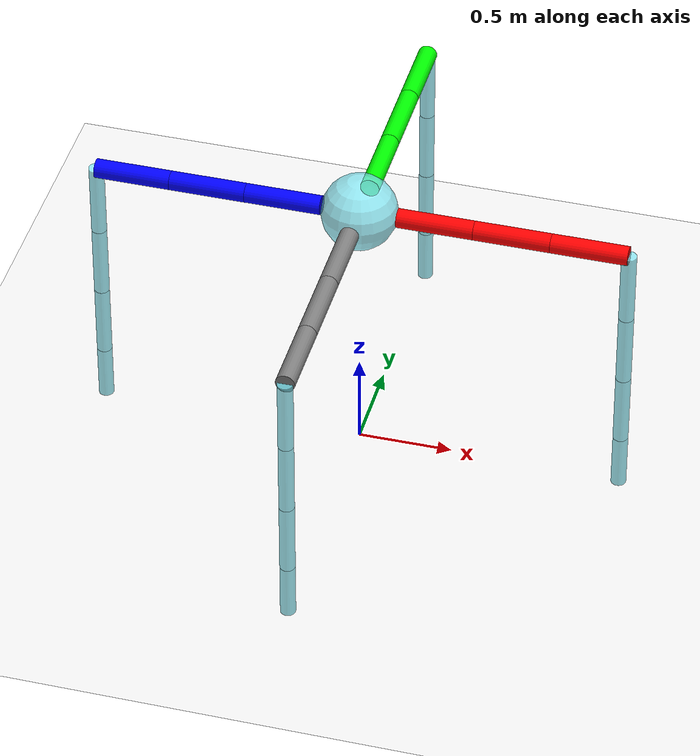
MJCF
<mujoco model="spider_robot"><actuator><motor name="leg1_upper_joint_motor" joint="leg1_upper_joint" gear="166.56367630195763" /><motor name="leg5_upper_joint_motor" joint="leg5_upper_joint" gear="166.56367630195763" /><motor name="leg9_upper_joint_motor" joint="leg9_upper_joint" gear="166.56367630195763" /><motor name="leg1_lower_joint_motor" joint="leg1_lower_joint" gear="230.9068722815382" /><motor name="leg5_lower_joint_motor" joint="leg5_lower_joint" gear="230.9068722815382" /><motor name="leg9_lower_joint_motor" joint="leg9_lower_joint" gear="230.9068722815382" /><motor name="leg13_lower_joint_motor" joint="leg13_lower_joint" gear="230.9068722815382" /><motor name="leg17_lower_joint_motor" joint="leg17_lower_joint" gear="230.9068722815382" /><motor name="leg2_upper_joint_motor" joint="leg2_upper_joint" gear="166.56367630195763" /><motor name="leg6_upper_joint_motor" joint="leg6_upper_joint" gear="166.56367630195763" /><motor name="leg10_upper_joint_motor" joint="leg10_upper_joint" gear="166.56367630195763" /><motor name="leg2_lower_joint_motor" joint="leg2_lower_joint" gear="230.9068722815382" /><motor name="leg6_lower_joint_motor" joint="leg6_lower_joint" gear="230.9068722815382" /><motor name="leg10_lower_joint_motor" joint="leg10_lower_joint" gear="230.9068722815382" /><motor name="leg14_lower_joint_motor" joint="leg14_lower_joint" gear="230.9068722815382" /><motor name="leg18_lower_joint_motor" joint="leg18_lower_joint" gear="230.9068722815382" /><motor name="leg3_upper_joint_motor" joint="leg3_upper_joint" gear="166.56367630195763" /><motor name="leg7_upper_joint_motor" joint="leg7_upper_joint" gear="166.56367630195763" /><motor name="leg11_upper_joint_motor" joint="leg11_upper_joint" gear="166.56367630195763" /><motor name="leg3_lower_joint_motor" joint="leg3_lower_joint" gear="230.9068722815382" /><motor name="leg7_lower_joint_motor" joint="leg7_lower_joint" gear="230.9068722815382" /><motor name="leg11_lower_joint_motor" joint="leg11_lower_joint" gear="230.9068722815382" /><motor name="leg15_lower_joint_motor" joint="leg15_lower_joint" gear="230.9068722815382" /><motor name="leg19_lower_joint_motor" joint="leg19_lower_joint" gear="230.9068722815382" /><motor name="leg4_upper_joint_motor" joint="leg4_upper_joint" gear="166.56367630195763" /><motor name="leg8_upper_joint_motor" joint="leg8_upper_joint" gear="166.56367630195763" /><motor name="leg12_upper_joint_motor" joint="leg12_upper_joint" gear="166.56367630195763" /><motor name="leg4_lower_joint_motor" joint="leg4_lower_joint" gear="230.9068722815382" /><motor name="leg8_lower_joint_motor" joint="leg8_lower_joint" gear="230.9068722815382" /><motor name="leg12_lower_joint_motor" joint="leg12_lower_joint" gear="230.9068722815382" /><motor name="leg16_lower_joint_motor" joint="leg16_lower_joint" gear="230.9068722815382" /><motor name="leg20_lower_joint_motor" joint="leg20_lower_joint" gear="230.9068722815382" /></actuator><option gravity="0 0 -9.81" /><worldbody><light diffuse=".5 .5 .5" pos="0 0 6" dir="0 0 -2" /><geom type="plane" size="10 10 0.1" rgba=".9 .9 .9 1" mass="1" /><body name="main" pos="0 0 1.5"><joint type="free" /><geom type="sphere" size="0.2" rgba="0.486 0.917 0.97 0.75" /><body name="leg1_upper_leg" pos="0.4 0 0"><joint name="leg1_upper_joint" type="hinge" pos="-0.2 0 0" axis="0 1 0" range="-25.0 0.0" damping="0.1" /><geom type="cylinder" size="0.05 0.2" rgba="1 0 0 1" euler="0 90 0" mass="5.428498379743029" /><body name="leg5_upper_leg" pos="0.4 0 0"><joint name="leg5_upper_joint" type="hinge" pos="-0.2 0 0" axis="0 1 0" range="-25.0 0.0" damping="0.1" /><geom type="cylinder" size="0.05 0.2" rgba="1 0 0 1" euler="0 90 0" mass="5.428498379743029" /><body name="leg9_upper_leg" pos="0.4 0 0"><joint name="leg9_upper_joint" type="hinge" pos="-0.2 0 0" axis="0 1 0" range="-25.0 0.0" damping="0.1" /><geom type="cylinder" size="0.05 0.2" rgba="1 0 0 1" euler="0 90 0" mass="5.428498379743029" /><body name="leg1_lower_leg" pos="0.2 0 -0.2"><joint name="leg1_lower_joint" type="hinge" pos="0 0 0.2" axis="0 1 0" range="0.0 30.0" damping="0.1" /><geom type="cylinder" pos="0 0 0" size="0.04 0.2" rgba="0.486 0.917 0.97 0.75" mass="3.695644959908331" /><body name="leg5_lower_leg" pos="0 0 -0.4"><joint name="leg5_lower_joint" type="hinge" pos="0 0 0.2" axis="0 1 0" range="0.0 30.0" damping="0.1" /><geom type="cylinder" pos="0 0 0" size="0.04 0.2" rgba="0.486 0.917 0.97 0.75" mass="3.695644959908331" /><body name="leg9_lower_leg" pos="0 0 -0.4"><joint name="leg9_lower_joint" type="hinge" pos="0 0 0.2" axis="0 1 0" range="0.0 30.0" damping="0.1" /><geom type="cylinder" pos="0 0 0" size="0.04 0.2" rgba="0.486 0.917 0.97 0.75" mass="3.695644959908331" /><body name="leg13_lower_leg" pos="0 0 -0.4"><joint name="leg13_lower_joint" type="hinge" pos="0 0 0.2" axis="0 1 0" range="0.0 30.0" damping="0.1" /><geom type="cylinder" pos="0 0 0" size="0.04 0.2" rgba="0.486 0.917 0.97 0.75" mass="3.695644959908331" /><body name="leg17_lower_leg" pos="0 0 -0.4"><joint name="leg17_lower_joint" type="hinge" pos="0 0 0.2" axis="0 1 0" range="0.0 30.0" damping="0.1" /><geom type="cylinder" pos="0 0 0" size="0.04 0.2" rgba="0.486 0.917 0.97 0.75" mass="3.695644959908331" /></body></body></body></body></body></body></body></body><body name="leg2_upper_leg" pos="0 0.4 0"><joint name="leg2_upper_joint" type="hinge" pos="0 -0.2 0" axis="1 0 0" range="0.0 25.0" damping="0.1" /><geom type="cylinder" size="0.05 0.2" rgba="0 1 0 1" euler="90 0 0" mass="5.428498379743029" /><body name="leg6_upper_leg" pos="0 0.4 0"><joint name="leg6_upper_joint" type="hinge" pos="0 -0.2 0" axis="1 0 0" range="0.0 25.0" damping="0.1" /><geom type="cylinder" size="0.05 0.2" rgba="0 1 0 1" euler="90 0 0" mass="5.428498379743029" /><body name="leg10_upper_leg" pos="0 0.4 0"><joint name="leg10_upper_joint" type="hinge" pos="0 -0.2 0" axis="1 0 0" range="0.0 25.0" damping="0.1" /><geom type="cylinder" size="0.05 0.2" rgba="0 1 0 1" euler="90 0 0" mass="5.428498379743029" /><body name="leg2_lower_leg" pos="0 0.2 -0.2"><joint name="leg2_lower_joint" type="hinge" pos="0 0 0.2" axis="1 0 0" range="-30.0 0.0" damping="0.1" /><geom type="cylinder" pos="0 0 0" size="0.04 0.2" rgba="0.486 0.917 0.97 0.75" mass="3.695644959908331" /><body name="leg6_lower_leg" pos="0 0 -0.4"><joint name="leg6_lower_joint" type="hinge" pos="0 0 0.2" axis="1 0 0" range="-30.0 0.0" damping="0.1" /><geom type="cylinder" pos="0 0 0" size="0.04 0.2" rgba="0.486 0.917 0.97 0.75" mass="3.695644959908331" /><body name="leg10_lower_leg" pos="0 0 -0.4"><joint name="leg10_lower_joint" type="hinge" pos="0 0 0.2" axis="1 0 0" range="-30.0 0.0" damping="0.1" /><geom type="cylinder" pos="0 0 0" size="0.04 0.2" rgba="0.486 0.917 0.97 0.75" mass="3.695644959908331" /><body name="leg14_lower_leg" pos="0 0 -0.4"><joint name="leg14_lower_joint" type="hinge" pos="0 0 0.2" axis="1 0 0" range="-30.0 0.0" damping="0.1" /><geom type="cylinder" pos="0 0 0" size="0.04 0.2" rgba="0.486 0.917 0.97 0.75" mass="3.695644959908331" /><body name="leg18_lower_leg" pos="0 0 -0.4"><joint name="leg18_lower_joint" type="hinge" pos="0 0 0.2" axis="1 0 0" range="-30.0 0.0" damping="0.1" /><geom type="cylinder" pos="0 0 0" size="0.04 0.2" rgba="0.486 0.917 0.97 0.75" mass="3.695644959908331" /></body></body></body></body></body></body></body></body><body name="leg3_upper_leg" pos="-0.4 0 0"><joint name="leg3_upper_joint" type="hinge" pos="0.2 0 0" axis="0 1 0" range="-25.0 0.0" damping="0.1" /><geom type="cylinder" size="0.05 0.2" rgba="0 0 1 1" euler="0 -90 0" mass="5.428498379743029" /><body name="leg7_upper_leg" pos="-0.4 0 0"><joint name="leg7_upper_joint" type="hinge" pos="0.2 0 0" axis="0 1 0" range="-25.0 0.0" damping="0.1" /><geom type="cylinder" size="0.05 0.2" rgba="0 0 1 1" euler="0 -90 0" mass="5.428498379743029" /><body name="leg11_upper_leg" pos="-0.4 0 0"><joint name="leg11_upper_joint" type="hinge" pos="0.2 0 0" axis="0 1 0" range="-25.0 0.0" damping="0.1" /><geom type="cylinder" size="0.05 0.2" rgba="0 0 1 1" euler="0 -90 0" mass="5.428498379743029" /><body name="leg3_lower_leg" pos="-0.2 0 -0.2"><joint name="leg3_lower_joint" type="hinge" pos="0 0 0.2" axis="0 1 0" range="0.0 30.0" damping="0.1" /><geom type="cylinder" pos="0 0 0" size="0.04 0.2" rgba="0.486 0.917 0.97 0.75" mass="3.695644959908331" /><body name="leg7_lower_leg" pos="0 0 -0.4"><joint name="leg7_lower_joint" type="hinge" pos="0 0 0.2" axis="0 1 0" range="0.0 30.0" damping="0.1" /><geom type="cylinder" pos="0 0 0" size="0.04 0.2" rgba="0.486 0.917 0.97 0.75" mass="3.695644959908331" /><body name="leg11_lower_leg" pos="0 0 -0.4"><joint name="leg11_lower_joint" type="hinge" pos="0 0 0.2" axis="0 1 0" range="0.0 30.0" damping="0.1" /><geom type="cylinder" pos="0 0 0" size="0.04 0.2" rgba="0.486 0.917 0.97 0.75" mass="3.695644959908331" /><body name="leg15_lower_leg" pos="0 0 -0.4"><joint name="leg15_lower_joint" type="hinge" pos="0 0 0.2" axis="0 1 0" range="0.0 30.0" damping="0.1" /><geom type="cylinder" pos="0 0 0" size="0.04 0.2" rgba="0.486 0.917 0.97 0.75" mass="3.695644959908331" /><body name="leg19_lower_leg" pos="0 0 -0.4"><joint name="leg19_lower_joint" type="hinge" pos="0 0 0.2" axis="0 1 0" range="0.0 30.0" damping="0.1" /><geom type="cylinder" pos="0 0 0" size="0.04 0.2" rgba="0.486 0.917 0.97 0.75" mass="3.695644959908331" /></body></body></body></body></body></body></body></body><body name="leg4_upper_leg" pos="0 -0.4 0"><joint name="leg4_upper_joint" type="hinge" pos="0 0.2 0" axis="1 0 0" range="0.0 25.0" damping="0.1" /><geom type="cylinder" size="0.05 0.2" rgba="0.5 0.5 0.5 1" euler="-90 0 0" mass="5.428498379743029" /><body name="leg8_upper_leg" pos="0 -0.4 0"><joint name="leg8_upper_joint" type="hinge" pos="0 0.2 0" axis="1 0 0" range="0.0 25.0" damping="0.1" /><geom type="cylinder" size="0.05 0.2" rgba="0.5 0.5 0.5 1" euler="-90 0 0" mass="5.428498379743029" /><body name="leg12_upper_leg" pos="0 -0.4 0"><joint name="leg12_upper_joint" type="hinge" pos="0 0.2 0" axis="1 0 0" range="0.0 25.0" damping="0.1" /><geom type="cylinder" size="0.05 0.2" rgba="0.5 0.5 0.5 1" euler="-90 0 0" mass="5.428498379743029" /><body name="leg4_lower_leg" pos="0 -0.2 -0.2"><joint name="leg4_lower_joint" type="hinge" pos="0 0 0.2" axis="1 0 0" range="-30.0 0.0" damping="0.1" /><geom type="cylinder" pos="0 0 0" size="0.04 0.2" rgba="0.486 0.917 0.97 0.75" mass="3.695644959908331" /><body name="leg8_lower_leg" pos="0 0 -0.4"><joint name="leg8_lower_joint" type="hinge" pos="0 0 0.2" axis="1 0 0" range="-30.0 0.0" damping="0.1" /><geom type="cylinder" pos="0 0 0" size="0.04 0.2" rgba="0.486 0.917 0.97 0.75" mass="3.695644959908331" /><body name="leg12_lower_leg" pos="0 0 -0.4"><joint name="leg12_lower_joint" type="hinge" pos="0 0 0.2" axis="1 0 0" range="-30.0 0.0" damping="0.1" /><geom type="cylinder" pos="0 0 0" size="0.04 0.2" rgba="0.486 0.917 0.97 0.75" mass="3.695644959908331" /><body name="leg16_lower_leg" pos="0 0 -0.4"><joint name="leg16_lower_joint" type="hinge" pos="0 0 0.2" axis="1 0 0" range="-30.0 0.0" damping="0.1" /><geom type="cylinder" pos="0 0 0" size="0.04 0.2" rgba="0.486 0.917 0.97 0.75" mass="3.695644959908331" /><body name="leg20_lower_leg" pos="0 0 -0.4"><joint name="leg20_lower_joint" type="hinge" pos="0 0 0.2" axis="1 0 0" range="-30.0 0.0" damping="0.1" /><geom type="cylinder" pos="0 0 0" size="0.04 0.2" rgba="0.486 0.917 0.97 0.75" mass="3.695644959908331" /></body></body></body></body></body></body></body></body></body></worldbody></mujoco>
